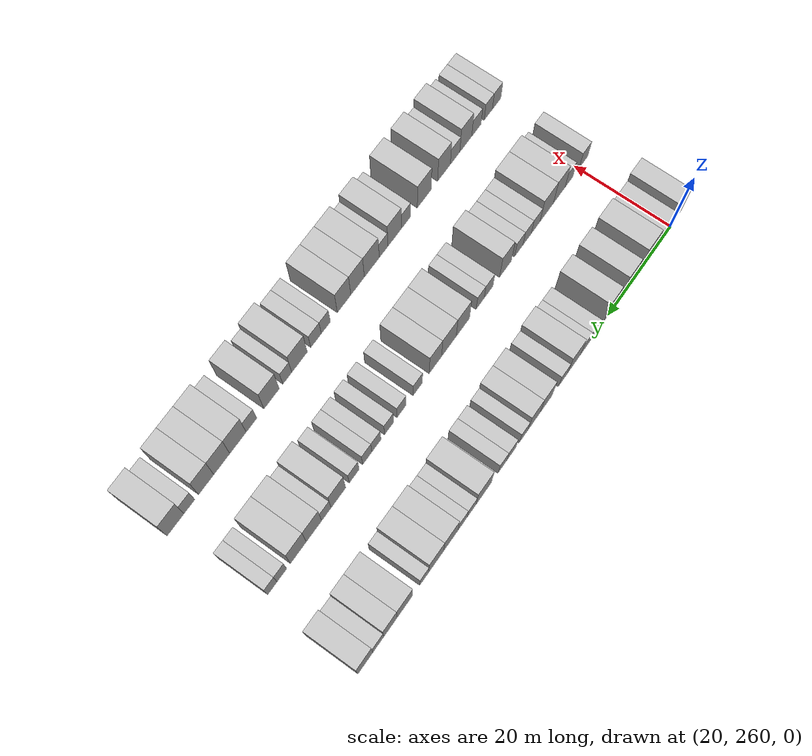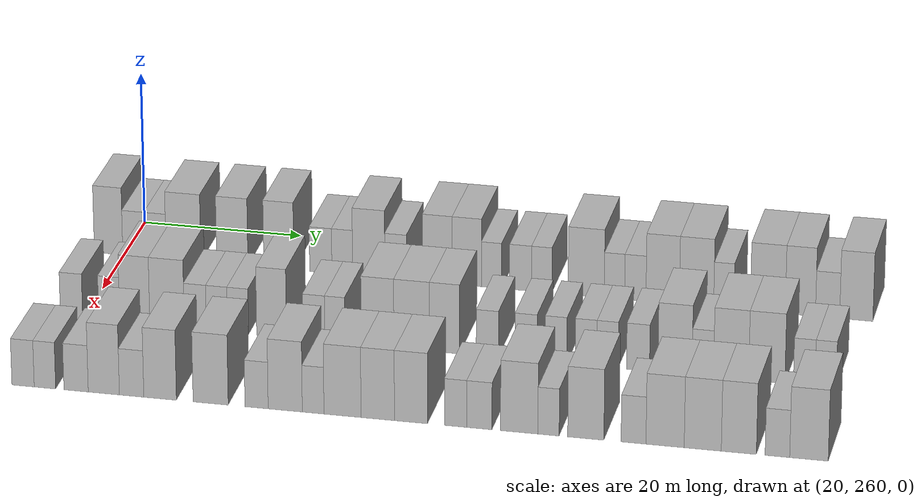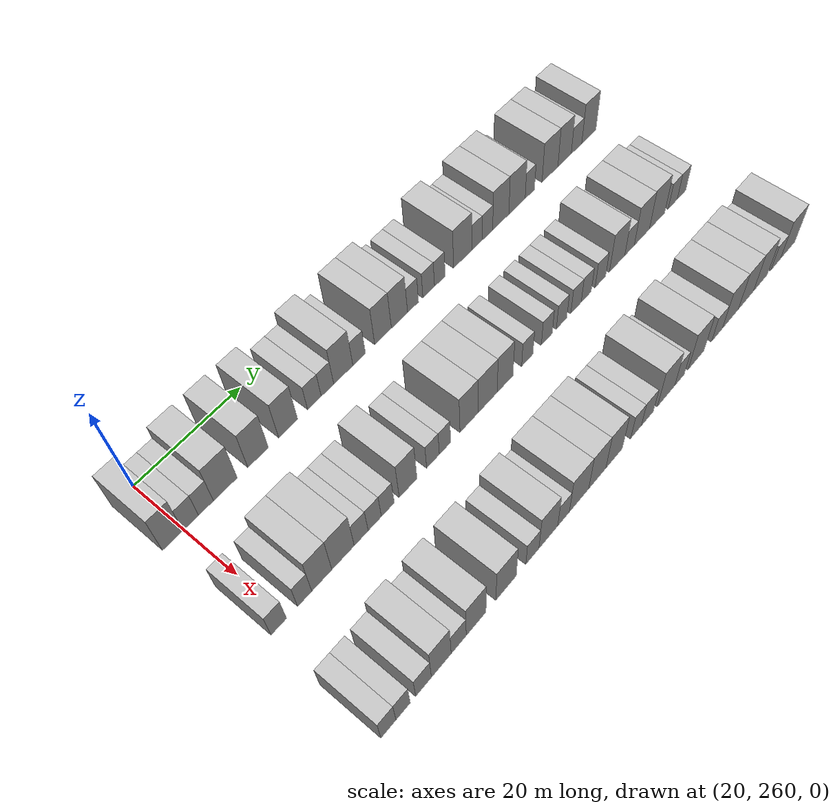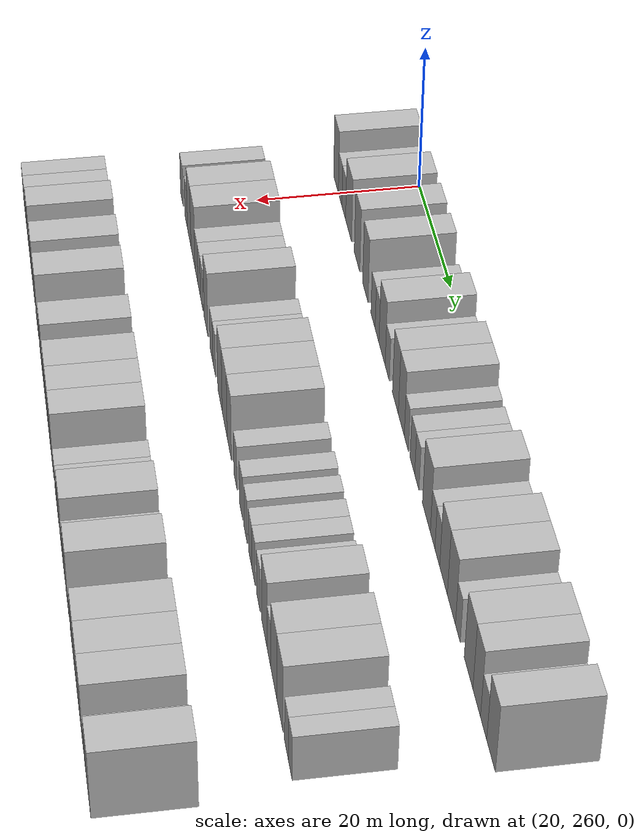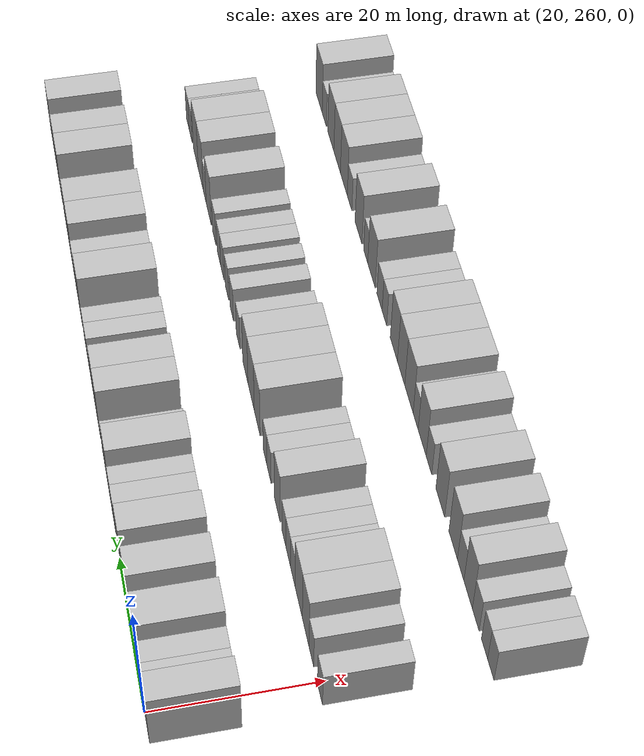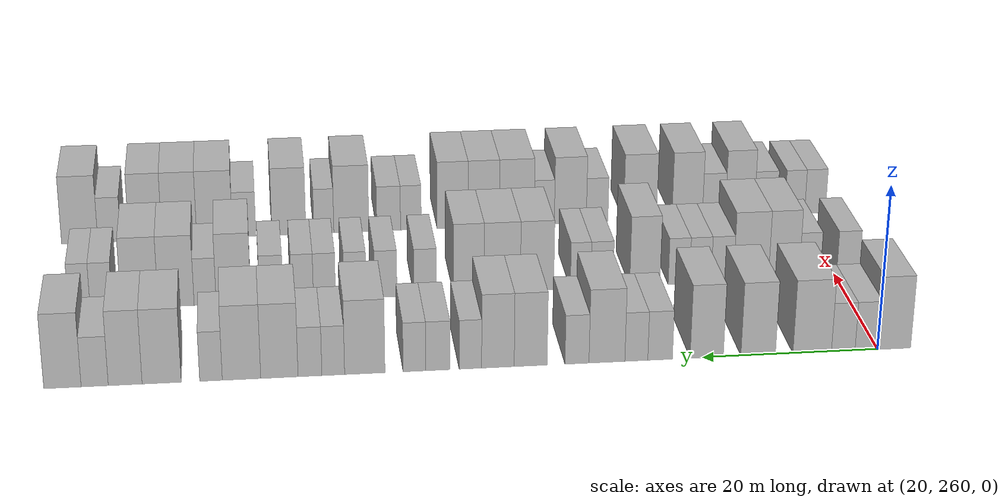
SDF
<sdf version="1.6">
 <world name="default">
  <model name="building_150">
   <static>1</static>
   <pose>25.0000 258.0299 0 0.000000 0.000000 0.000000</pose>
   <link name="link">
    <pose>0 0 4.50 0 0 0</pose>
    <collision name="collision"><geometry><box><size>10.0000 3.6040 9.0000</size></box></geometry></collision>
    <visual name="visual">
     <cast_shadows>0</cast_shadows>
     <geometry><box><size>10.0000 3.6040 9.0000</size></box></geometry>
     <material>
      <script>
       <uri>model://HANNAS_wall/materials/scripts</uri>
       <uri>model://HANNAS_wall/materials/textures</uri>
       <name>vrc/HANNAS_wall</name>
      </script>
     </material>
    </visual>
   </link>
  </model>
  <model name="building_151">
   <static>1</static>
   <pose>25.0000 261.2260 0 0.000000 0.000000 0.000000</pose>
   <link name="link">
    <pose>0 0 3.00 0 0 0</pose>
    <collision name="collision"><geometry><box><size>10.0000 2.7881 6.0000</size></box></geometry></collision>
    <visual name="visual">
     <cast_shadows>0</cast_shadows>
     <geometry><box><size>10.0000 2.7881 6.0000</size></box></geometry>
     <material>
      <script>
       <uri>model://HANNAS_wall/materials/scripts</uri>
       <uri>model://HANNAS_wall/materials/textures</uri>
       <name>vrc/HANNAS_wall</name>
      </script>
     </material>
    </visual>
   </link>
  </model>
  <model name="building_152">
   <static>1</static>
   <pose>25.0000 263.9710 0 0.000000 0.000000 0.000000</pose>
   <link name="link">
    <pose>0 0 3.00 0 0 0</pose>
    <collision name="collision"><geometry><box><size>10.0000 2.7019 6.0000</size></box></geometry></collision>
    <visual name="visual">
     <cast_shadows>0</cast_shadows>
     <geometry><box><size>10.0000 2.7019 6.0000</size></box></geometry>
     <material>
      <script>
       <uri>model://HANNAS_wall/materials/scripts</uri>
       <uri>model://HANNAS_wall/materials/textures</uri>
       <name>vrc/HANNAS_wall</name>
      </script>
     </material>
    </visual>
   </link>
  </model>
  <model name="building_153">
   <static>1</static>
   <pose>25.0000 267.5236 0 0.000000 0.000000 0.000000</pose>
   <link name="link">
    <pose>0 0 4.50 0 0 0</pose>
    <collision name="collision"><geometry><box><size>10.0000 4.4035 9.0000</size></box></geometry></collision>
    <visual name="visual">
     <cast_shadows>0</cast_shadows>
     <geometry><box><size>10.0000 4.4035 9.0000</size></box></geometry>
     <material>
      <script>
       <uri>model://HANNAS_wall/materials/scripts</uri>
       <uri>model://HANNAS_wall/materials/textures</uri>
       <name>vrc/HANNAS_wall</name>
      </script>
     </material>
    </visual>
   </link>
  </model>
  <model name="building_154">
   <static>1</static>
   <pose>25.0000 273.6934 0 0.000000 0.000000 0.000000</pose>
   <link name="link">
    <pose>0 0 4.50 0 0 0</pose>
    <collision name="collision"><geometry><box><size>10.0000 3.9360 9.0000</size></box></geometry></collision>
    <visual name="visual">
     <cast_shadows>0</cast_shadows>
     <geometry><box><size>10.0000 3.9360 9.0000</size></box></geometry>
     <material>
      <script>
       <uri>model://HANNAS_wall/materials/scripts</uri>
       <uri>model://HANNAS_wall/materials/textures</uri>
       <name>vrc/HANNAS_wall</name>
      </script>
     </material>
    </visual>
   </link>
  </model>
  <model name="building_155">
   <static>1</static>
   <pose>25.0000 279.5452 0 0.000000 0.000000 0.000000</pose>
   <link name="link">
    <pose>0 0 4.50 0 0 0</pose>
    <collision name="collision"><geometry><box><size>10.0000 3.7676 9.0000</size></box></geometry></collision>
    <visual name="visual">
     <cast_shadows>0</cast_shadows>
     <geometry><box><size>10.0000 3.7676 9.0000</size></box></geometry>
     <material>
      <script>
       <uri>model://HANNAS_wall/materials/scripts</uri>
       <uri>model://HANNAS_wall/materials/textures</uri>
       <name>vrc/HANNAS_wall</name>
      </script>
     </material>
    </visual>
   </link>
  </model>
  <model name="building_156">
   <static>1</static>
   <pose>25.0000 284.8193 0 0.000000 0.000000 0.000000</pose>
   <link name="link">
    <pose>0 0 3.00 0 0 0</pose>
    <collision name="collision"><geometry><box><size>10.0000 2.7807 6.0000</size></box></geometry></collision>
    <visual name="visual">
     <cast_shadows>0</cast_shadows>
     <geometry><box><size>10.0000 2.7807 6.0000</size></box></geometry>
     <material>
      <script>
       <uri>model://HANNAS_wall/materials/scripts</uri>
       <uri>model://HANNAS_wall/materials/textures</uri>
       <name>vrc/HANNAS_wall</name>
      </script>
     </material>
    </visual>
   </link>
  </model>
  <model name="building_157">
   <static>1</static>
   <pose>25.0000 287.5037 0 0.000000 0.000000 0.000000</pose>
   <link name="link">
    <pose>0 0 3.00 0 0 0</pose>
    <collision name="collision"><geometry><box><size>10.0000 2.5881 6.0000</size></box></geometry></collision>
    <visual name="visual">
     <cast_shadows>0</cast_shadows>
     <geometry><box><size>10.0000 2.5881 6.0000</size></box></geometry>
     <material>
      <script>
       <uri>model://HANNAS_wall/materials/scripts</uri>
       <uri>model://HANNAS_wall/materials/textures</uri>
       <name>vrc/HANNAS_wall</name>
      </script>
     </material>
    </visual>
   </link>
  </model>
  <model name="building_158">
   <static>1</static>
   <pose>25.0000 290.8162 0 0.000000 0.000000 0.000000</pose>
   <link name="link">
    <pose>0 0 4.50 0 0 0</pose>
    <collision name="collision"><geometry><box><size>10.0000 4.0368 9.0000</size></box></geometry></collision>
    <visual name="visual">
     <cast_shadows>0</cast_shadows>
     <geometry><box><size>10.0000 4.0368 9.0000</size></box></geometry>
     <material>
      <script>
       <uri>model://HANNAS_wall/materials/scripts</uri>
       <uri>model://HANNAS_wall/materials/textures</uri>
       <name>vrc/HANNAS_wall</name>
      </script>
     </material>
    </visual>
   </link>
  </model>
  <model name="building_159">
   <static>1</static>
   <pose>25.0000 294.1810 0 0.000000 0.000000 0.000000</pose>
   <link name="link">
    <pose>0 0 3.00 0 0 0</pose>
    <collision name="collision"><geometry><box><size>10.0000 2.6929 6.0000</size></box></geometry></collision>
    <visual name="visual">
     <cast_shadows>0</cast_shadows>
     <geometry><box><size>10.0000 2.6929 6.0000</size></box></geometry>
     <material>
      <script>
       <uri>model://HANNAS_wall/materials/scripts</uri>
       <uri>model://HANNAS_wall/materials/textures</uri>
       <name>vrc/HANNAS_wall</name>
      </script>
     </material>
    </visual>
   </link>
  </model>
  <model name="building_160">
   <static>1</static>
   <pose>25.0000 299.3679 0 0.000000 0.000000 0.000000</pose>
   <link name="link">
    <pose>0 0 4.50 0 0 0</pose>
    <collision name="collision"><geometry><box><size>10.0000 3.6808 9.0000</size></box></geometry></collision>
    <visual name="visual">
     <cast_shadows>0</cast_shadows>
     <geometry><box><size>10.0000 3.6808 9.0000</size></box></geometry>
     <material>
      <script>
       <uri>model://HANNAS_wall/materials/scripts</uri>
       <uri>model://HANNAS_wall/materials/textures</uri>
       <name>vrc/HANNAS_wall</name>
      </script>
     </material>
    </visual>
   </link>
  </model>
  <model name="building_161">
   <static>1</static>
   <pose>25.0000 303.0254 0 0.000000 0.000000 0.000000</pose>
   <link name="link">
    <pose>0 0 4.50 0 0 0</pose>
    <collision name="collision"><geometry><box><size>10.0000 3.6342 9.0000</size></box></geometry></collision>
    <visual name="visual">
     <cast_shadows>0</cast_shadows>
     <geometry><box><size>10.0000 3.6342 9.0000</size></box></geometry>
     <material>
      <script>
       <uri>model://HANNAS_wall/materials/scripts</uri>
       <uri>model://HANNAS_wall/materials/textures</uri>
       <name>vrc/HANNAS_wall</name>
      </script>
     </material>
    </visual>
   </link>
  </model>
  <model name="building_162">
   <static>1</static>
   <pose>25.0000 306.0906 0 0.000000 0.000000 0.000000</pose>
   <link name="link">
    <pose>0 0 3.00 0 0 0</pose>
    <collision name="collision"><geometry><box><size>10.0000 2.4963 6.0000</size></box></geometry></collision>
    <visual name="visual">
     <cast_shadows>0</cast_shadows>
     <geometry><box><size>10.0000 2.4963 6.0000</size></box></geometry>
     <material>
      <script>
       <uri>model://HANNAS_wall/materials/scripts</uri>
       <uri>model://HANNAS_wall/materials/textures</uri>
       <name>vrc/HANNAS_wall</name>
      </script>
     </material>
    </visual>
   </link>
  </model>
  <model name="building_163">
   <static>1</static>
   <pose>25.0000 309.6911 0 0.000000 0.000000 0.000000</pose>
   <link name="link">
    <pose>0 0 3.00 0 0 0</pose>
    <collision name="collision"><geometry><box><size>10.0000 2.7046 6.0000</size></box></geometry></collision>
    <visual name="visual">
     <cast_shadows>0</cast_shadows>
     <geometry><box><size>10.0000 2.7046 6.0000</size></box></geometry>
     <material>
      <script>
       <uri>model://HANNAS_wall/materials/scripts</uri>
       <uri>model://HANNAS_wall/materials/textures</uri>
       <name>vrc/HANNAS_wall</name>
      </script>
     </material>
    </visual>
   </link>
  </model>
  <model name="building_164">
   <static>1</static>
   <pose>25.0000 312.3021 0 0.000000 0.000000 0.000000</pose>
   <link name="link">
    <pose>0 0 3.00 0 0 0</pose>
    <collision name="collision"><geometry><box><size>10.0000 2.5175 6.0000</size></box></geometry></collision>
    <visual name="visual">
     <cast_shadows>0</cast_shadows>
     <geometry><box><size>10.0000 2.5175 6.0000</size></box></geometry>
     <material>
      <script>
       <uri>model://HANNAS_wall/materials/scripts</uri>
       <uri>model://HANNAS_wall/materials/textures</uri>
       <name>vrc/HANNAS_wall</name>
      </script>
     </material>
    </visual>
   </link>
  </model>
  <model name="building_165">
   <static>1</static>
   <pose>25.0000 317.7884 0 0.000000 0.000000 0.000000</pose>
   <link name="link">
    <pose>0 0 4.50 0 0 0</pose>
    <collision name="collision"><geometry><box><size>10.0000 4.4550 9.0000</size></box></geometry></collision>
    <visual name="visual">
     <cast_shadows>0</cast_shadows>
     <geometry><box><size>10.0000 4.4550 9.0000</size></box></geometry>
     <material>
      <script>
       <uri>model://HANNAS_wall/materials/scripts</uri>
       <uri>model://HANNAS_wall/materials/textures</uri>
       <name>vrc/HANNAS_wall</name>
      </script>
     </material>
    </visual>
   </link>
  </model>
  <model name="building_166">
   <static>1</static>
   <pose>25.0000 321.2660 0 0.000000 0.000000 0.000000</pose>
   <link name="link">
    <pose>0 0 3.00 0 0 0</pose>
    <collision name="collision"><geometry><box><size>10.0000 2.5002 6.0000</size></box></geometry></collision>
    <visual name="visual">
     <cast_shadows>0</cast_shadows>
     <geometry><box><size>10.0000 2.5002 6.0000</size></box></geometry>
     <material>
      <script>
       <uri>model://HANNAS_wall/materials/scripts</uri>
       <uri>model://HANNAS_wall/materials/textures</uri>
       <name>vrc/HANNAS_wall</name>
      </script>
     </material>
    </visual>
   </link>
  </model>
  <model name="building_167">
   <static>1</static>
   <pose>25.0000 323.8257 0 0.000000 0.000000 0.000000</pose>
   <link name="link">
    <pose>0 0 3.00 0 0 0</pose>
    <collision name="collision"><geometry><box><size>10.0000 2.6192 6.0000</size></box></geometry></collision>
    <visual name="visual">
     <cast_shadows>0</cast_shadows>
     <geometry><box><size>10.0000 2.6192 6.0000</size></box></geometry>
     <material>
      <script>
       <uri>model://HANNAS_wall/materials/scripts</uri>
       <uri>model://HANNAS_wall/materials/textures</uri>
       <name>vrc/HANNAS_wall</name>
      </script>
     </material>
    </visual>
   </link>
  </model>
  <model name="building_168">
   <static>1</static>
   <pose>25.0000 327.1814 0 0.000000 0.000000 0.000000</pose>
   <link name="link">
    <pose>0 0 4.50 0 0 0</pose>
    <collision name="collision"><geometry><box><size>10.0000 4.0922 9.0000</size></box></geometry></collision>
    <visual name="visual">
     <cast_shadows>0</cast_shadows>
     <geometry><box><size>10.0000 4.0922 9.0000</size></box></geometry>
     <material>
      <script>
       <uri>model://HANNAS_wall/materials/scripts</uri>
       <uri>model://HANNAS_wall/materials/textures</uri>
       <name>vrc/HANNAS_wall</name>
      </script>
     </material>
    </visual>
   </link>
  </model>
  <model name="building_169">
   <static>1</static>
   <pose>25.0000 331.3268 0 0.000000 0.000000 0.000000</pose>
   <link name="link">
    <pose>0 0 4.50 0 0 0</pose>
    <collision name="collision"><geometry><box><size>10.0000 4.1986 9.0000</size></box></geometry></collision>
    <visual name="visual">
     <cast_shadows>0</cast_shadows>
     <geometry><box><size>10.0000 4.1986 9.0000</size></box></geometry>
     <material>
      <script>
       <uri>model://HANNAS_wall/materials/scripts</uri>
       <uri>model://HANNAS_wall/materials/textures</uri>
       <name>vrc/HANNAS_wall</name>
      </script>
     </material>
    </visual>
   </link>
  </model>
  <model name="building_170">
   <static>1</static>
   <pose>25.0000 334.6580 0 0.000000 0.000000 0.000000</pose>
   <link name="link">
    <pose>0 0 3.00 0 0 0</pose>
    <collision name="collision"><geometry><box><size>10.0000 2.4638 6.0000</size></box></geometry></collision>
    <visual name="visual">
     <cast_shadows>0</cast_shadows>
     <geometry><box><size>10.0000 2.4638 6.0000</size></box></geometry>
     <material>
      <script>
       <uri>model://HANNAS_wall/materials/scripts</uri>
       <uri>model://HANNAS_wall/materials/textures</uri>
       <name>vrc/HANNAS_wall</name>
      </script>
     </material>
    </visual>
   </link>
  </model>
  <model name="building_171">
   <static>1</static>
   <pose>25.0000 340.0176 0 0.000000 0.000000 0.000000</pose>
   <link name="link">
    <pose>0 0 4.50 0 0 0</pose>
    <collision name="collision"><geometry><box><size>10.0000 4.2554 9.0000</size></box></geometry></collision>
    <visual name="visual">
     <cast_shadows>0</cast_shadows>
     <geometry><box><size>10.0000 4.2554 9.0000</size></box></geometry>
     <material>
      <script>
       <uri>model://HANNAS_wall/materials/scripts</uri>
       <uri>model://HANNAS_wall/materials/textures</uri>
       <name>vrc/HANNAS_wall</name>
      </script>
     </material>
    </visual>
   </link>
  </model>
  <model name="building_172">
   <static>1</static>
   <pose>25.0000 343.9783 0 0.000000 0.000000 0.000000</pose>
   <link name="link">
    <pose>0 0 4.50 0 0 0</pose>
    <collision name="collision"><geometry><box><size>10.0000 3.6662 9.0000</size></box></geometry></collision>
    <visual name="visual">
     <cast_shadows>0</cast_shadows>
     <geometry><box><size>10.0000 3.6662 9.0000</size></box></geometry>
     <material>
      <script>
       <uri>model://HANNAS_wall/materials/scripts</uri>
       <uri>model://HANNAS_wall/materials/textures</uri>
       <name>vrc/HANNAS_wall</name>
      </script>
     </material>
    </visual>
   </link>
  </model>
  <model name="building_173">
   <static>1</static>
   <pose>25.0000 347.2781 0 0.000000 0.000000 0.000000</pose>
   <link name="link">
    <pose>0 0 3.00 0 0 0</pose>
    <collision name="collision"><geometry><box><size>10.0000 2.9334 6.0000</size></box></geometry></collision>
    <visual name="visual">
     <cast_shadows>0</cast_shadows>
     <geometry><box><size>10.0000 2.9334 6.0000</size></box></geometry>
     <material>
      <script>
       <uri>model://HANNAS_wall/materials/scripts</uri>
       <uri>model://HANNAS_wall/materials/textures</uri>
       <name>vrc/HANNAS_wall</name>
      </script>
     </material>
    </visual>
   </link>
  </model>
  <model name="building_174">
   <static>1</static>
   <pose>25.0000 350.7543 0 0.000000 0.000000 0.000000</pose>
   <link name="link">
    <pose>0 0 4.50 0 0 0</pose>
    <collision name="collision"><geometry><box><size>10.0000 4.0191 9.0000</size></box></geometry></collision>
    <visual name="visual">
     <cast_shadows>0</cast_shadows>
     <geometry><box><size>10.0000 4.0191 9.0000</size></box></geometry>
     <material>
      <script>
       <uri>model://HANNAS_wall/materials/scripts</uri>
       <uri>model://HANNAS_wall/materials/textures</uri>
       <name>vrc/HANNAS_wall</name>
      </script>
     </material>
    </visual>
   </link>
  </model>
  <model name="building_318">
   <static>1</static>
   <pose>44.0000 258.5484 0 0.000000 0.000000 0.000000</pose>
   <link name="link">
    <pose>0 0 3.00 0 0 0</pose>
    <collision name="collision"><geometry><box><size>10.0000 2.7639 6.0000</size></box></geometry></collision>
    <visual name="visual">
     <cast_shadows>0</cast_shadows>
     <geometry><box><size>10.0000 2.7639 6.0000</size></box></geometry>
     <material>
      <script>
       <uri>model://HANNAS_wall/materials/scripts</uri>
       <uri>model://HANNAS_wall/materials/textures</uri>
       <name>vrc/HANNAS_wall</name>
      </script>
     </material>
    </visual>
   </link>
  </model>
  <model name="building_319">
   <static>1</static>
   <pose>44.0000 263.2181 0 0.000000 0.000000 0.000000</pose>
   <link name="link">
    <pose>0 0 3.00 0 0 0</pose>
    <collision name="collision"><geometry><box><size>10.0000 2.5754 6.0000</size></box></geometry></collision>
    <visual name="visual">
     <cast_shadows>0</cast_shadows>
     <geometry><box><size>10.0000 2.5754 6.0000</size></box></geometry>
     <material>
      <script>
       <uri>model://HANNAS_wall/materials/scripts</uri>
       <uri>model://HANNAS_wall/materials/textures</uri>
       <name>vrc/HANNAS_wall</name>
      </script>
     </material>
    </visual>
   </link>
  </model>
  <model name="building_320">
   <static>1</static>
   <pose>44.0000 266.3753 0 0.000000 0.000000 0.000000</pose>
   <link name="link">
    <pose>0 0 4.50 0 0 0</pose>
    <collision name="collision"><geometry><box><size>10.0000 3.7390 9.0000</size></box></geometry></collision>
    <visual name="visual">
     <cast_shadows>0</cast_shadows>
     <geometry><box><size>10.0000 3.7390 9.0000</size></box></geometry>
     <material>
      <script>
       <uri>model://HANNAS_wall/materials/scripts</uri>
       <uri>model://HANNAS_wall/materials/textures</uri>
       <name>vrc/HANNAS_wall</name>
      </script>
     </material>
    </visual>
   </link>
  </model>
  <model name="building_321">
   <static>1</static>
   <pose>44.0000 270.3717 0 0.000000 0.000000 0.000000</pose>
   <link name="link">
    <pose>0 0 4.50 0 0 0</pose>
    <collision name="collision"><geometry><box><size>10.0000 4.2538 9.0000</size></box></geometry></collision>
    <visual name="visual">
     <cast_shadows>0</cast_shadows>
     <geometry><box><size>10.0000 4.2538 9.0000</size></box></geometry>
     <material>
      <script>
       <uri>model://HANNAS_wall/materials/scripts</uri>
       <uri>model://HANNAS_wall/materials/textures</uri>
       <name>vrc/HANNAS_wall</name>
      </script>
     </material>
    </visual>
   </link>
  </model>
  <model name="building_322">
   <static>1</static>
   <pose>44.0000 273.8565 0 0.000000 0.000000 0.000000</pose>
   <link name="link">
    <pose>0 0 3.00 0 0 0</pose>
    <collision name="collision"><geometry><box><size>10.0000 2.7157 6.0000</size></box></geometry></collision>
    <visual name="visual">
     <cast_shadows>0</cast_shadows>
     <geometry><box><size>10.0000 2.7157 6.0000</size></box></geometry>
     <material>
      <script>
       <uri>model://HANNAS_wall/materials/scripts</uri>
       <uri>model://HANNAS_wall/materials/textures</uri>
       <name>vrc/HANNAS_wall</name>
      </script>
     </material>
    </visual>
   </link>
  </model>
  <model name="building_323">
   <static>1</static>
   <pose>44.0000 276.5188 0 0.000000 0.000000 0.000000</pose>
   <link name="link">
    <pose>0 0 3.00 0 0 0</pose>
    <collision name="collision"><geometry><box><size>10.0000 2.6089 6.0000</size></box></geometry></collision>
    <visual name="visual">
     <cast_shadows>0</cast_shadows>
     <geometry><box><size>10.0000 2.6089 6.0000</size></box></geometry>
     <material>
      <script>
       <uri>model://HANNAS_wall/materials/scripts</uri>
       <uri>model://HANNAS_wall/materials/textures</uri>
       <name>vrc/HANNAS_wall</name>
      </script>
     </material>
    </visual>
   </link>
  </model>
  <model name="building_324">
   <static>1</static>
   <pose>44.0000 279.1141 0 0.000000 0.000000 0.000000</pose>
   <link name="link">
    <pose>0 0 3.00 0 0 0</pose>
    <collision name="collision"><geometry><box><size>10.0000 2.5817 6.0000</size></box></geometry></collision>
    <visual name="visual">
     <cast_shadows>0</cast_shadows>
     <geometry><box><size>10.0000 2.5817 6.0000</size></box></geometry>
     <material>
      <script>
       <uri>model://HANNAS_wall/materials/scripts</uri>
       <uri>model://HANNAS_wall/materials/textures</uri>
       <name>vrc/HANNAS_wall</name>
      </script>
     </material>
    </visual>
   </link>
  </model>
  <model name="building_325">
   <static>1</static>
   <pose>44.0000 283.2283 0 0.000000 0.000000 0.000000</pose>
   <link name="link">
    <pose>0 0 4.50 0 0 0</pose>
    <collision name="collision"><geometry><box><size>10.0000 3.6467 9.0000</size></box></geometry></collision>
    <visual name="visual">
     <cast_shadows>0</cast_shadows>
     <geometry><box><size>10.0000 3.6467 9.0000</size></box></geometry>
     <material>
      <script>
       <uri>model://HANNAS_wall/materials/scripts</uri>
       <uri>model://HANNAS_wall/materials/textures</uri>
       <name>vrc/HANNAS_wall</name>
      </script>
     </material>
    </visual>
   </link>
  </model>
  <model name="building_326">
   <static>1</static>
   <pose>44.0000 288.3923 0 0.000000 0.000000 0.000000</pose>
   <link name="link">
    <pose>0 0 3.00 0 0 0</pose>
    <collision name="collision"><geometry><box><size>10.0000 2.6813 6.0000</size></box></geometry></collision>
    <visual name="visual">
     <cast_shadows>0</cast_shadows>
     <geometry><box><size>10.0000 2.6813 6.0000</size></box></geometry>
     <material>
      <script>
       <uri>model://HANNAS_wall/materials/scripts</uri>
       <uri>model://HANNAS_wall/materials/textures</uri>
       <name>vrc/HANNAS_wall</name>
      </script>
     </material>
    </visual>
   </link>
  </model>
  <model name="building_327">
   <static>1</static>
   <pose>44.0000 290.9563 0 0.000000 0.000000 0.000000</pose>
   <link name="link">
    <pose>0 0 3.00 0 0 0</pose>
    <collision name="collision"><geometry><box><size>10.0000 2.4468 6.0000</size></box></geometry></collision>
    <visual name="visual">
     <cast_shadows>0</cast_shadows>
     <geometry><box><size>10.0000 2.4468 6.0000</size></box></geometry>
     <material>
      <script>
       <uri>model://HANNAS_wall/materials/scripts</uri>
       <uri>model://HANNAS_wall/materials/textures</uri>
       <name>vrc/HANNAS_wall</name>
      </script>
     </material>
    </visual>
   </link>
  </model>
  <model name="building_328">
   <static>1</static>
   <pose>44.0000 296.1685 0 0.000000 0.000000 0.000000</pose>
   <link name="link">
    <pose>0 0 4.50 0 0 0</pose>
    <collision name="collision"><geometry><box><size>10.0000 3.9776 9.0000</size></box></geometry></collision>
    <visual name="visual">
     <cast_shadows>0</cast_shadows>
     <geometry><box><size>10.0000 3.9776 9.0000</size></box></geometry>
     <material>
      <script>
       <uri>model://HANNAS_wall/materials/scripts</uri>
       <uri>model://HANNAS_wall/materials/textures</uri>
       <name>vrc/HANNAS_wall</name>
      </script>
     </material>
    </visual>
   </link>
  </model>
  <model name="building_329">
   <static>1</static>
   <pose>44.0000 300.3192 0 0.000000 0.000000 0.000000</pose>
   <link name="link">
    <pose>0 0 4.50 0 0 0</pose>
    <collision name="collision"><geometry><box><size>10.0000 4.3237 9.0000</size></box></geometry></collision>
    <visual name="visual">
     <cast_shadows>0</cast_shadows>
     <geometry><box><size>10.0000 4.3237 9.0000</size></box></geometry>
     <material>
      <script>
       <uri>model://HANNAS_wall/materials/scripts</uri>
       <uri>model://HANNAS_wall/materials/textures</uri>
       <name>vrc/HANNAS_wall</name>
      </script>
     </material>
    </visual>
   </link>
  </model>
  <model name="building_330">
   <static>1</static>
   <pose>44.0000 304.3069 0 0.000000 0.000000 0.000000</pose>
   <link name="link">
    <pose>0 0 4.50 0 0 0</pose>
    <collision name="collision"><geometry><box><size>10.0000 3.6517 9.0000</size></box></geometry></collision>
    <visual name="visual">
     <cast_shadows>0</cast_shadows>
     <geometry><box><size>10.0000 3.6517 9.0000</size></box></geometry>
     <material>
      <script>
       <uri>model://HANNAS_wall/materials/scripts</uri>
       <uri>model://HANNAS_wall/materials/textures</uri>
       <name>vrc/HANNAS_wall</name>
      </script>
     </material>
    </visual>
   </link>
  </model>
  <model name="building_331">
   <static>1</static>
   <pose>44.0000 309.4735 0 0.000000 0.000000 0.000000</pose>
   <link name="link">
    <pose>0 0 3.00 0 0 0</pose>
    <collision name="collision"><geometry><box><size>10.0000 2.6816 6.0000</size></box></geometry></collision>
    <visual name="visual">
     <cast_shadows>0</cast_shadows>
     <geometry><box><size>10.0000 2.6816 6.0000</size></box></geometry>
     <material>
      <script>
       <uri>model://HANNAS_wall/materials/scripts</uri>
       <uri>model://HANNAS_wall/materials/textures</uri>
       <name>vrc/HANNAS_wall</name>
      </script>
     </material>
    </visual>
   </link>
  </model>
  <model name="building_332">
   <static>1</static>
   <pose>44.0000 314.1364 0 0.000000 0.000000 0.000000</pose>
   <link name="link">
    <pose>0 0 3.00 0 0 0</pose>
    <collision name="collision"><geometry><box><size>10.0000 2.6442 6.0000</size></box></geometry></collision>
    <visual name="visual">
     <cast_shadows>0</cast_shadows>
     <geometry><box><size>10.0000 2.6442 6.0000</size></box></geometry>
     <material>
      <script>
       <uri>model://HANNAS_wall/materials/scripts</uri>
       <uri>model://HANNAS_wall/materials/textures</uri>
       <name>vrc/HANNAS_wall</name>
      </script>
     </material>
    </visual>
   </link>
  </model>
  <model name="building_333">
   <static>1</static>
   <pose>44.0000 317.7558 0 0.000000 0.000000 0.000000</pose>
   <link name="link">
    <pose>0 0 3.00 0 0 0</pose>
    <collision name="collision"><geometry><box><size>10.0000 2.5944 6.0000</size></box></geometry></collision>
    <visual name="visual">
     <cast_shadows>0</cast_shadows>
     <geometry><box><size>10.0000 2.5944 6.0000</size></box></geometry>
     <material>
      <script>
       <uri>model://HANNAS_wall/materials/scripts</uri>
       <uri>model://HANNAS_wall/materials/textures</uri>
       <name>vrc/HANNAS_wall</name>
      </script>
     </material>
    </visual>
   </link>
  </model>
  <model name="building_334">
   <static>1</static>
   <pose>44.0000 321.3544 0 0.000000 0.000000 0.000000</pose>
   <link name="link">
    <pose>0 0 3.00 0 0 0</pose>
    <collision name="collision"><geometry><box><size>10.0000 2.6028 6.0000</size></box></geometry></collision>
    <visual name="visual">
     <cast_shadows>0</cast_shadows>
     <geometry><box><size>10.0000 2.6028 6.0000</size></box></geometry>
     <material>
      <script>
       <uri>model://HANNAS_wall/materials/scripts</uri>
       <uri>model://HANNAS_wall/materials/textures</uri>
       <name>vrc/HANNAS_wall</name>
      </script>
     </material>
    </visual>
   </link>
  </model>
  <model name="building_335">
   <static>1</static>
   <pose>44.0000 323.9350 0 0.000000 0.000000 0.000000</pose>
   <link name="link">
    <pose>0 0 3.00 0 0 0</pose>
    <collision name="collision"><geometry><box><size>10.0000 2.5584 6.0000</size></box></geometry></collision>
    <visual name="visual">
     <cast_shadows>0</cast_shadows>
     <geometry><box><size>10.0000 2.5584 6.0000</size></box></geometry>
     <material>
      <script>
       <uri>model://HANNAS_wall/materials/scripts</uri>
       <uri>model://HANNAS_wall/materials/textures</uri>
       <name>vrc/HANNAS_wall</name>
      </script>
     </material>
    </visual>
   </link>
  </model>
  <model name="building_336">
   <static>1</static>
   <pose>44.0000 327.5883 0 0.000000 0.000000 0.000000</pose>
   <link name="link">
    <pose>0 0 3.00 0 0 0</pose>
    <collision name="collision"><geometry><box><size>10.0000 2.7481 6.0000</size></box></geometry></collision>
    <visual name="visual">
     <cast_shadows>0</cast_shadows>
     <geometry><box><size>10.0000 2.7481 6.0000</size></box></geometry>
     <material>
      <script>
       <uri>model://HANNAS_wall/materials/scripts</uri>
       <uri>model://HANNAS_wall/materials/textures</uri>
       <name>vrc/HANNAS_wall</name>
      </script>
     </material>
    </visual>
   </link>
  </model>
  <model name="building_337">
   <static>1</static>
   <pose>44.0000 331.9963 0 0.000000 0.000000 0.000000</pose>
   <link name="link">
    <pose>0 0 4.50 0 0 0</pose>
    <collision name="collision"><geometry><box><size>10.0000 4.0678 9.0000</size></box></geometry></collision>
    <visual name="visual">
     <cast_shadows>0</cast_shadows>
     <geometry><box><size>10.0000 4.0678 9.0000</size></box></geometry>
     <material>
      <script>
       <uri>model://HANNAS_wall/materials/scripts</uri>
       <uri>model://HANNAS_wall/materials/textures</uri>
       <name>vrc/HANNAS_wall</name>
      </script>
     </material>
    </visual>
   </link>
  </model>
  <model name="building_338">
   <static>1</static>
   <pose>44.0000 335.3155 0 0.000000 0.000000 0.000000</pose>
   <link name="link">
    <pose>0 0 3.00 0 0 0</pose>
    <collision name="collision"><geometry><box><size>10.0000 2.5706 6.0000</size></box></geometry></collision>
    <visual name="visual">
     <cast_shadows>0</cast_shadows>
     <geometry><box><size>10.0000 2.5706 6.0000</size></box></geometry>
     <material>
      <script>
       <uri>model://HANNAS_wall/materials/scripts</uri>
       <uri>model://HANNAS_wall/materials/textures</uri>
       <name>vrc/HANNAS_wall</name>
      </script>
     </material>
    </visual>
   </link>
  </model>
  <model name="building_339">
   <static>1</static>
   <pose>44.0000 338.6870 0 0.000000 0.000000 0.000000</pose>
   <link name="link">
    <pose>0 0 4.50 0 0 0</pose>
    <collision name="collision"><geometry><box><size>10.0000 4.1725 9.0000</size></box></geometry></collision>
    <visual name="visual">
     <cast_shadows>0</cast_shadows>
     <geometry><box><size>10.0000 4.1725 9.0000</size></box></geometry>
     <material>
      <script>
       <uri>model://HANNAS_wall/materials/scripts</uri>
       <uri>model://HANNAS_wall/materials/textures</uri>
       <name>vrc/HANNAS_wall</name>
      </script>
     </material>
    </visual>
   </link>
  </model>
  <model name="building_340">
   <static>1</static>
   <pose>44.0000 342.9212 0 0.000000 0.000000 0.000000</pose>
   <link name="link">
    <pose>0 0 4.50 0 0 0</pose>
    <collision name="collision"><geometry><box><size>10.0000 4.2958 9.0000</size></box></geometry></collision>
    <visual name="visual">
     <cast_shadows>0</cast_shadows>
     <geometry><box><size>10.0000 4.2958 9.0000</size></box></geometry>
     <material>
      <script>
       <uri>model://HANNAS_wall/materials/scripts</uri>
       <uri>model://HANNAS_wall/materials/textures</uri>
       <name>vrc/HANNAS_wall</name>
      </script>
     </material>
    </visual>
   </link>
  </model>
  <model name="building_341">
   <static>1</static>
   <pose>44.0000 347.3561 0 0.000000 0.000000 0.000000</pose>
   <link name="link">
    <pose>0 0 3.00 0 0 0</pose>
    <collision name="collision"><geometry><box><size>10.0000 2.5741 6.0000</size></box></geometry></collision>
    <visual name="visual">
     <cast_shadows>0</cast_shadows>
     <geometry><box><size>10.0000 2.5741 6.0000</size></box></geometry>
     <material>
      <script>
       <uri>model://HANNAS_wall/materials/scripts</uri>
       <uri>model://HANNAS_wall/materials/textures</uri>
       <name>vrc/HANNAS_wall</name>
      </script>
     </material>
    </visual>
   </link>
  </model>
  <model name="building_342">
   <static>1</static>
   <pose>44.0000 349.8891 0 0.000000 0.000000 0.000000</pose>
   <link name="link">
    <pose>0 0 3.00 0 0 0</pose>
    <collision name="collision"><geometry><box><size>10.0000 2.4918 6.0000</size></box></geometry></collision>
    <visual name="visual">
     <cast_shadows>0</cast_shadows>
     <geometry><box><size>10.0000 2.4918 6.0000</size></box></geometry>
     <material>
      <script>
       <uri>model://HANNAS_wall/materials/scripts</uri>
       <uri>model://HANNAS_wall/materials/textures</uri>
       <name>vrc/HANNAS_wall</name>
      </script>
     </material>
    </visual>
   </link>
  </model>
  <model name="building_484">
   <static>1</static>
   <pose>63.0000 257.9009 0 0.000000 0.000000 0.000000</pose>
   <link name="link">
    <pose>0 0 3.00 0 0 0</pose>
    <collision name="collision"><geometry><box><size>10.0000 2.7054 6.0000</size></box></geometry></collision>
    <visual name="visual">
     <cast_shadows>0</cast_shadows>
     <geometry><box><size>10.0000 2.7054 6.0000</size></box></geometry>
     <material>
      <script>
       <uri>model://HANNAS_wall/materials/scripts</uri>
       <uri>model://HANNAS_wall/materials/textures</uri>
       <name>vrc/HANNAS_wall</name>
      </script>
     </material>
    </visual>
   </link>
  </model>
  <model name="building_485">
   <static>1</static>
   <pose>63.0000 260.5548 0 0.000000 0.000000 0.000000</pose>
   <link name="link">
    <pose>0 0 3.00 0 0 0</pose>
    <collision name="collision"><geometry><box><size>10.0000 2.6023 6.0000</size></box></geometry></collision>
    <visual name="visual">
     <cast_shadows>0</cast_shadows>
     <geometry><box><size>10.0000 2.6023 6.0000</size></box></geometry>
     <material>
      <script>
       <uri>model://HANNAS_wall/materials/scripts</uri>
       <uri>model://HANNAS_wall/materials/textures</uri>
       <name>vrc/HANNAS_wall</name>
      </script>
     </material>
    </visual>
   </link>
  </model>
  <model name="building_486">
   <static>1</static>
   <pose>63.0000 264.3264 0 0.000000 0.000000 0.000000</pose>
   <link name="link">
    <pose>0 0 3.00 0 0 0</pose>
    <collision name="collision"><geometry><box><size>10.0000 2.9409 6.0000</size></box></geometry></collision>
    <visual name="visual">
     <cast_shadows>0</cast_shadows>
     <geometry><box><size>10.0000 2.9409 6.0000</size></box></geometry>
     <material>
      <script>
       <uri>model://HANNAS_wall/materials/scripts</uri>
       <uri>model://HANNAS_wall/materials/textures</uri>
       <name>vrc/HANNAS_wall</name>
      </script>
     </material>
    </visual>
   </link>
  </model>
  <model name="building_487">
   <static>1</static>
   <pose>63.0000 267.6765 0 0.000000 0.000000 0.000000</pose>
   <link name="link">
    <pose>0 0 4.50 0 0 0</pose>
    <collision name="collision"><geometry><box><size>10.0000 3.7593 9.0000</size></box></geometry></collision>
    <visual name="visual">
     <cast_shadows>0</cast_shadows>
     <geometry><box><size>10.0000 3.7593 9.0000</size></box></geometry>
     <material>
      <script>
       <uri>model://HANNAS_wall/materials/scripts</uri>
       <uri>model://HANNAS_wall/materials/textures</uri>
       <name>vrc/HANNAS_wall</name>
      </script>
     </material>
    </visual>
   </link>
  </model>
  <model name="building_488">
   <static>1</static>
   <pose>63.0000 271.0261 0 0.000000 0.000000 0.000000</pose>
   <link name="link">
    <pose>0 0 3.00 0 0 0</pose>
    <collision name="collision"><geometry><box><size>10.0000 2.9399 6.0000</size></box></geometry></collision>
    <visual name="visual">
     <cast_shadows>0</cast_shadows>
     <geometry><box><size>10.0000 2.9399 6.0000</size></box></geometry>
     <material>
      <script>
       <uri>model://HANNAS_wall/materials/scripts</uri>
       <uri>model://HANNAS_wall/materials/textures</uri>
       <name>vrc/HANNAS_wall</name>
      </script>
     </material>
    </visual>
   </link>
  </model>
  <model name="building_489">
   <static>1</static>
   <pose>63.0000 274.4584 0 0.000000 0.000000 0.000000</pose>
   <link name="link">
    <pose>0 0 4.50 0 0 0</pose>
    <collision name="collision"><geometry><box><size>10.0000 3.9247 9.0000</size></box></geometry></collision>
    <visual name="visual">
     <cast_shadows>0</cast_shadows>
     <geometry><box><size>10.0000 3.9247 9.0000</size></box></geometry>
     <material>
      <script>
       <uri>model://HANNAS_wall/materials/scripts</uri>
       <uri>model://HANNAS_wall/materials/textures</uri>
       <name>vrc/HANNAS_wall</name>
      </script>
     </material>
    </visual>
   </link>
  </model>
  <model name="building_490">
   <static>1</static>
   <pose>63.0000 280.5268 0 0.000000 0.000000 0.000000</pose>
   <link name="link">
    <pose>0 0 4.50 0 0 0</pose>
    <collision name="collision"><geometry><box><size>10.0000 4.2121 9.0000</size></box></geometry></collision>
    <visual name="visual">
     <cast_shadows>0</cast_shadows>
     <geometry><box><size>10.0000 4.2121 9.0000</size></box></geometry>
     <material>
      <script>
       <uri>model://HANNAS_wall/materials/scripts</uri>
       <uri>model://HANNAS_wall/materials/textures</uri>
       <name>vrc/HANNAS_wall</name>
      </script>
     </material>
    </visual>
   </link>
  </model>
  <model name="building_491">
   <static>1</static>
   <pose>63.0000 286.0172 0 0.000000 0.000000 0.000000</pose>
   <link name="link">
    <pose>0 0 3.00 0 0 0</pose>
    <collision name="collision"><geometry><box><size>10.0000 2.7685 6.0000</size></box></geometry></collision>
    <visual name="visual">
     <cast_shadows>0</cast_shadows>
     <geometry><box><size>10.0000 2.7685 6.0000</size></box></geometry>
     <material>
      <script>
       <uri>model://HANNAS_wall/materials/scripts</uri>
       <uri>model://HANNAS_wall/materials/textures</uri>
       <name>vrc/HANNAS_wall</name>
      </script>
     </material>
    </visual>
   </link>
  </model>
  <model name="building_492">
   <static>1</static>
   <pose>63.0000 289.4374 0 0.000000 0.000000 0.000000</pose>
   <link name="link">
    <pose>0 0 4.50 0 0 0</pose>
    <collision name="collision"><geometry><box><size>10.0000 4.0720 9.0000</size></box></geometry></collision>
    <visual name="visual">
     <cast_shadows>0</cast_shadows>
     <geometry><box><size>10.0000 4.0720 9.0000</size></box></geometry>
     <material>
      <script>
       <uri>model://HANNAS_wall/materials/scripts</uri>
       <uri>model://HANNAS_wall/materials/textures</uri>
       <name>vrc/HANNAS_wall</name>
      </script>
     </material>
    </visual>
   </link>
  </model>
  <model name="building_493">
   <static>1</static>
   <pose>63.0000 292.7626 0 0.000000 0.000000 0.000000</pose>
   <link name="link">
    <pose>0 0 3.00 0 0 0</pose>
    <collision name="collision"><geometry><box><size>10.0000 2.5783 6.0000</size></box></geometry></collision>
    <visual name="visual">
     <cast_shadows>0</cast_shadows>
     <geometry><box><size>10.0000 2.5783 6.0000</size></box></geometry>
     <material>
      <script>
       <uri>model://HANNAS_wall/materials/scripts</uri>
       <uri>model://HANNAS_wall/materials/textures</uri>
       <name>vrc/HANNAS_wall</name>
      </script>
     </material>
    </visual>
   </link>
  </model>
  <model name="building_494">
   <static>1</static>
   <pose>63.0000 296.2533 0 0.000000 0.000000 0.000000</pose>
   <link name="link">
    <pose>0 0 4.50 0 0 0</pose>
    <collision name="collision"><geometry><box><size>10.0000 4.4031 9.0000</size></box></geometry></collision>
    <visual name="visual">
     <cast_shadows>0</cast_shadows>
     <geometry><box><size>10.0000 4.4031 9.0000</size></box></geometry>
     <material>
      <script>
       <uri>model://HANNAS_wall/materials/scripts</uri>
       <uri>model://HANNAS_wall/materials/textures</uri>
       <name>vrc/HANNAS_wall</name>
      </script>
     </material>
    </visual>
   </link>
  </model>
  <model name="building_495">
   <static>1</static>
   <pose>63.0000 300.4370 0 0.000000 0.000000 0.000000</pose>
   <link name="link">
    <pose>0 0 4.50 0 0 0</pose>
    <collision name="collision"><geometry><box><size>10.0000 3.9644 9.0000</size></box></geometry></collision>
    <visual name="visual">
     <cast_shadows>0</cast_shadows>
     <geometry><box><size>10.0000 3.9644 9.0000</size></box></geometry>
     <material>
      <script>
       <uri>model://HANNAS_wall/materials/scripts</uri>
       <uri>model://HANNAS_wall/materials/textures</uri>
       <name>vrc/HANNAS_wall</name>
      </script>
     </material>
    </visual>
   </link>
  </model>
  <model name="building_496">
   <static>1</static>
   <pose>63.0000 304.3772 0 0.000000 0.000000 0.000000</pose>
   <link name="link">
    <pose>0 0 4.50 0 0 0</pose>
    <collision name="collision"><geometry><box><size>10.0000 3.9160 9.0000</size></box></geometry></collision>
    <visual name="visual">
     <cast_shadows>0</cast_shadows>
     <geometry><box><size>10.0000 3.9160 9.0000</size></box></geometry>
     <material>
      <script>
       <uri>model://HANNAS_wall/materials/scripts</uri>
       <uri>model://HANNAS_wall/materials/textures</uri>
       <name>vrc/HANNAS_wall</name>
      </script>
     </material>
    </visual>
   </link>
  </model>
  <model name="building_497">
   <static>1</static>
   <pose>63.0000 309.6421 0 0.000000 0.000000 0.000000</pose>
   <link name="link">
    <pose>0 0 3.00 0 0 0</pose>
    <collision name="collision"><geometry><box><size>10.0000 2.6138 6.0000</size></box></geometry></collision>
    <visual name="visual">
     <cast_shadows>0</cast_shadows>
     <geometry><box><size>10.0000 2.6138 6.0000</size></box></geometry>
     <material>
      <script>
       <uri>model://HANNAS_wall/materials/scripts</uri>
       <uri>model://HANNAS_wall/materials/textures</uri>
       <name>vrc/HANNAS_wall</name>
      </script>
     </material>
    </visual>
   </link>
  </model>
  <model name="building_498">
   <static>1</static>
   <pose>63.0000 312.4394 0 0.000000 0.000000 0.000000</pose>
   <link name="link">
    <pose>0 0 3.00 0 0 0</pose>
    <collision name="collision"><geometry><box><size>10.0000 2.9809 6.0000</size></box></geometry></collision>
    <visual name="visual">
     <cast_shadows>0</cast_shadows>
     <geometry><box><size>10.0000 2.9809 6.0000</size></box></geometry>
     <material>
      <script>
       <uri>model://HANNAS_wall/materials/scripts</uri>
       <uri>model://HANNAS_wall/materials/textures</uri>
       <name>vrc/HANNAS_wall</name>
      </script>
     </material>
    </visual>
   </link>
  </model>
  <model name="building_499">
   <static>1</static>
   <pose>63.0000 317.1245 0 0.000000 0.000000 0.000000</pose>
   <link name="link">
    <pose>0 0 4.50 0 0 0</pose>
    <collision name="collision"><geometry><box><size>10.0000 4.3894 9.0000</size></box></geometry></collision>
    <visual name="visual">
     <cast_shadows>0</cast_shadows>
     <geometry><box><size>10.0000 4.3894 9.0000</size></box></geometry>
     <material>
      <script>
       <uri>model://HANNAS_wall/materials/scripts</uri>
       <uri>model://HANNAS_wall/materials/textures</uri>
       <name>vrc/HANNAS_wall</name>
      </script>
     </material>
    </visual>
   </link>
  </model>
  <model name="building_500">
   <static>1</static>
   <pose>63.0000 320.5645 0 0.000000 0.000000 0.000000</pose>
   <link name="link">
    <pose>0 0 3.00 0 0 0</pose>
    <collision name="collision"><geometry><box><size>10.0000 2.4906 6.0000</size></box></geometry></collision>
    <visual name="visual">
     <cast_shadows>0</cast_shadows>
     <geometry><box><size>10.0000 2.4906 6.0000</size></box></geometry>
     <material>
      <script>
       <uri>model://HANNAS_wall/materials/scripts</uri>
       <uri>model://HANNAS_wall/materials/textures</uri>
       <name>vrc/HANNAS_wall</name>
      </script>
     </material>
    </visual>
   </link>
  </model>
  <model name="building_501">
   <static>1</static>
   <pose>63.0000 324.9248 0 0.000000 0.000000 0.000000</pose>
   <link name="link">
    <pose>0 0 4.50 0 0 0</pose>
    <collision name="collision"><geometry><box><size>10.0000 4.2299 9.0000</size></box></geometry></collision>
    <visual name="visual">
     <cast_shadows>0</cast_shadows>
     <geometry><box><size>10.0000 4.2299 9.0000</size></box></geometry>
     <material>
      <script>
       <uri>model://HANNAS_wall/materials/scripts</uri>
       <uri>model://HANNAS_wall/materials/textures</uri>
       <name>vrc/HANNAS_wall</name>
      </script>
     </material>
    </visual>
   </link>
  </model>
  <model name="building_502">
   <static>1</static>
   <pose>63.0000 330.4908 0 0.000000 0.000000 0.000000</pose>
   <link name="link">
    <pose>0 0 3.00 0 0 0</pose>
    <collision name="collision"><geometry><box><size>10.0000 2.9020 6.0000</size></box></geometry></collision>
    <visual name="visual">
     <cast_shadows>0</cast_shadows>
     <geometry><box><size>10.0000 2.9020 6.0000</size></box></geometry>
     <material>
      <script>
       <uri>model://HANNAS_wall/materials/scripts</uri>
       <uri>model://HANNAS_wall/materials/textures</uri>
       <name>vrc/HANNAS_wall</name>
      </script>
     </material>
    </visual>
   </link>
  </model>
  <model name="building_503">
   <static>1</static>
   <pose>63.0000 334.1638 0 0.000000 0.000000 0.000000</pose>
   <link name="link">
    <pose>0 0 4.50 0 0 0</pose>
    <collision name="collision"><geometry><box><size>10.0000 4.4441 9.0000</size></box></geometry></collision>
    <visual name="visual">
     <cast_shadows>0</cast_shadows>
     <geometry><box><size>10.0000 4.4441 9.0000</size></box></geometry>
     <material>
      <script>
       <uri>model://HANNAS_wall/materials/scripts</uri>
       <uri>model://HANNAS_wall/materials/textures</uri>
       <name>vrc/HANNAS_wall</name>
      </script>
     </material>
    </visual>
   </link>
  </model>
  <model name="building_504">
   <static>1</static>
   <pose>63.0000 338.5369 0 0.000000 0.000000 0.000000</pose>
   <link name="link">
    <pose>0 0 4.50 0 0 0</pose>
    <collision name="collision"><geometry><box><size>10.0000 4.3021 9.0000</size></box></geometry></collision>
    <visual name="visual">
     <cast_shadows>0</cast_shadows>
     <geometry><box><size>10.0000 4.3021 9.0000</size></box></geometry>
     <material>
      <script>
       <uri>model://HANNAS_wall/materials/scripts</uri>
       <uri>model://HANNAS_wall/materials/textures</uri>
       <name>vrc/HANNAS_wall</name>
      </script>
     </material>
    </visual>
   </link>
  </model>
  <model name="building_505">
   <static>1</static>
   <pose>63.0000 342.7197 0 0.000000 0.000000 0.000000</pose>
   <link name="link">
    <pose>0 0 4.50 0 0 0</pose>
    <collision name="collision"><geometry><box><size>10.0000 4.0634 9.0000</size></box></geometry></collision>
    <visual name="visual">
     <cast_shadows>0</cast_shadows>
     <geometry><box><size>10.0000 4.0634 9.0000</size></box></geometry>
     <material>
      <script>
       <uri>model://HANNAS_wall/materials/scripts</uri>
       <uri>model://HANNAS_wall/materials/textures</uri>
       <name>vrc/HANNAS_wall</name>
      </script>
     </material>
    </visual>
   </link>
  </model>
  <model name="building_506">
   <static>1</static>
   <pose>63.0000 347.1703 0 0.000000 0.000000 0.000000</pose>
   <link name="link">
    <pose>0 0 3.00 0 0 0</pose>
    <collision name="collision"><geometry><box><size>10.0000 2.8380 6.0000</size></box></geometry></collision>
    <visual name="visual">
     <cast_shadows>0</cast_shadows>
     <geometry><box><size>10.0000 2.8380 6.0000</size></box></geometry>
     <material>
      <script>
       <uri>model://HANNAS_wall/materials/scripts</uri>
       <uri>model://HANNAS_wall/materials/textures</uri>
       <name>vrc/HANNAS_wall</name>
      </script>
     </material>
    </visual>
   </link>
  </model>
  <model name="building_507">
   <static>1</static>
   <pose>63.0000 350.8123 0 0.000000 0.000000 0.000000</pose>
   <link name="link">
    <pose>0 0 4.50 0 0 0</pose>
    <collision name="collision"><geometry><box><size>10.0000 4.4459 9.0000</size></box></geometry></collision>
    <visual name="visual">
     <cast_shadows>0</cast_shadows>
     <geometry><box><size>10.0000 4.4459 9.0000</size></box></geometry>
     <material>
      <script>
       <uri>model://HANNAS_wall/materials/scripts</uri>
       <uri>model://HANNAS_wall/materials/textures</uri>
       <name>vrc/HANNAS_wall</name>
      </script>
     </material>
    </visual>
   </link>
  </model>
 </world>
</sdf>
